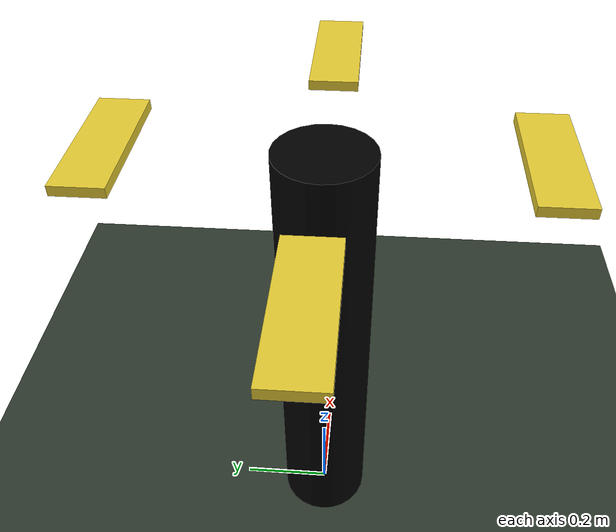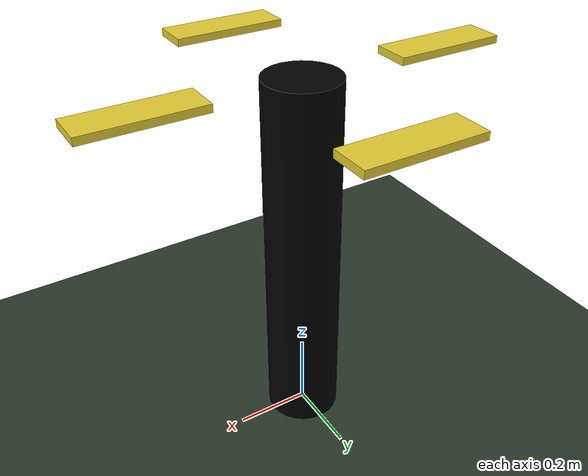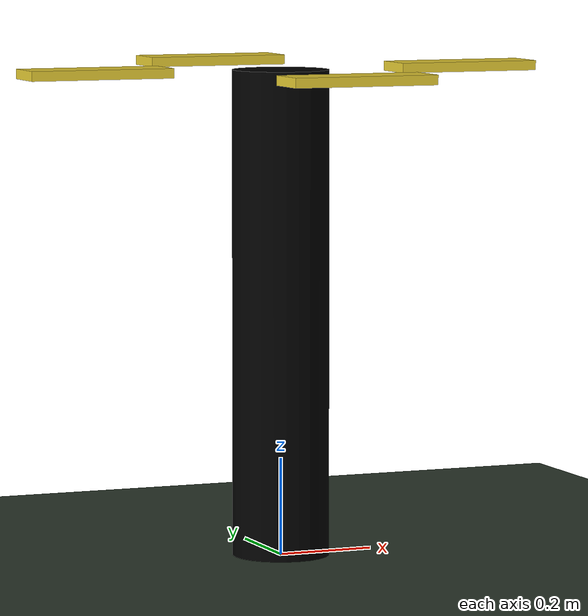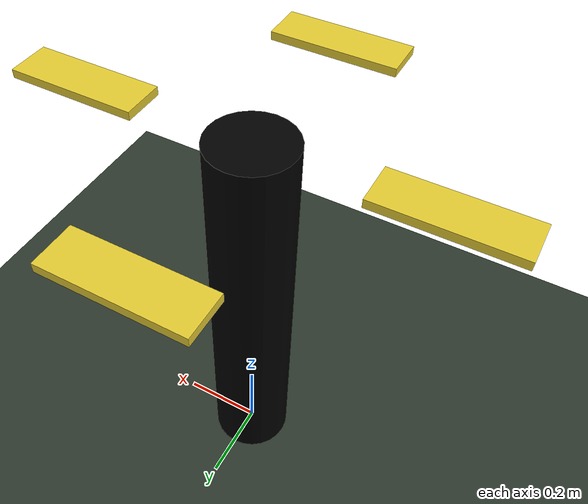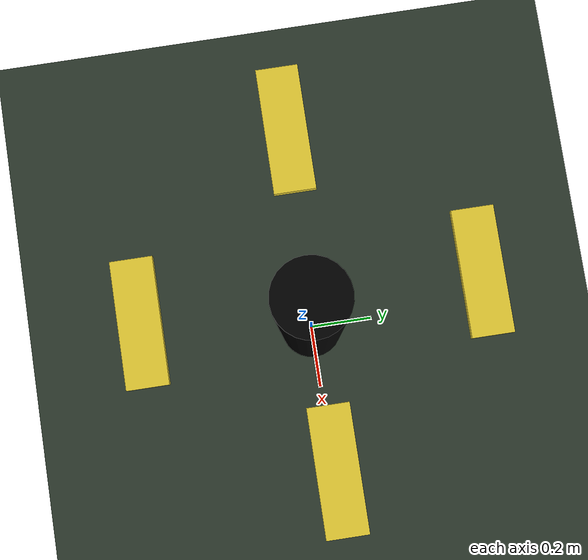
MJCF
<mujoco model="tower_demo">
  <option timestep="0.002" />

  <!-- 简单资产：只用纯色材质，不用外部文件 -->
  <asset>
    <!-- 塔的材质（黑色） -->
    <material name="tower_mat" rgba="0 0 0 1" />

    <!-- 地面材质（棋盘格） -->
    <texture name="ground_tex" type="2d" builtin="checker"
             width="512" height="512"
             rgb1="0.2 0.3 0.2" rgb2="0.15 0.15 0.15" />
    <material name="ground_mat" texture="ground_tex" texrepeat="4 4" />

    <!-- 板子的材质（亮黄色，容易看） -->
    <material name="plate_mat" rgba="0.9 0.8 0.2 1" />
  </asset>

  <worldbody>
    <!-- 环境光源 -->
    <light name="light" pos="0 -3 3" dir="0 1 -1"
           diffuse="1 1 1" specular="0.3 0.3 0.3" />

    <!-- 一个固定相机，可选 -->
    <camera name="fixed_cam" pos="0 -4 2" zaxis="0 0 1" />

    <!-- 地面 -->
    <geom name="floor" type="plane" size="5 5 0.1"
          material="ground_mat" condim="3" />

    <!-- 黑色塔：高度 1.0，底部在 z=0 -->
    <body name="tower" pos="0 0 0.5">
      <!-- cylinder: size="radius half_height" -->
      <geom name="tower_geom" type="cylinder" size="0.1 0.5"
            material="tower_mat" />

      <!-- 塔顶：在塔中心再往上 0.5，z=1.0 -->
      <body name="tower_top" pos="0 0 0.5">
        <!-- 绕 z 轴旋转的关节 -->
        <joint name="spin" type="hinge" axis="0 0 1" limited="false" />

        <!-- 四块板子，用 box 几何代替 -->
        <!-- 圆周半径 R=0.4 -->
        <!-- box 的 size 是半边长，这里长 0.3、宽 0.1、厚 0.02（实际尺寸） -->
        <body name="plate1" pos="0.4 0 0">
          <geom type="box" size="0.15 0.05 0.01"
                material="plate_mat" mass="0.1" />
        </body>

        <body name="plate2" pos="0 0.4 0">
          <geom type="box" size="0.15 0.05 0.01"
                material="plate_mat" mass="0.1" />
        </body>

        <body name="plate3" pos="-0.4 0 0">
          <geom type="box" size="0.15 0.05 0.01"
                material="plate_mat" mass="0.1" />
        </body>

        <body name="plate4" pos="0 -0.4 0">
          <geom type="box" size="0.15 0.05 0.01"
                material="plate_mat" mass="0.1" />
        </body>

      </body>
    </body>
  </worldbody>

  <!-- 用一个速度电机让 "spin" 关节持续旋转 -->
  <actuator>
    <!-- kv=1 时，ctrl 大致就是目标角速度(rad/s) -->
    <velocity name="spin_motor" joint="spin" kv="1.0" />
  </actuator>
</mujoco>
